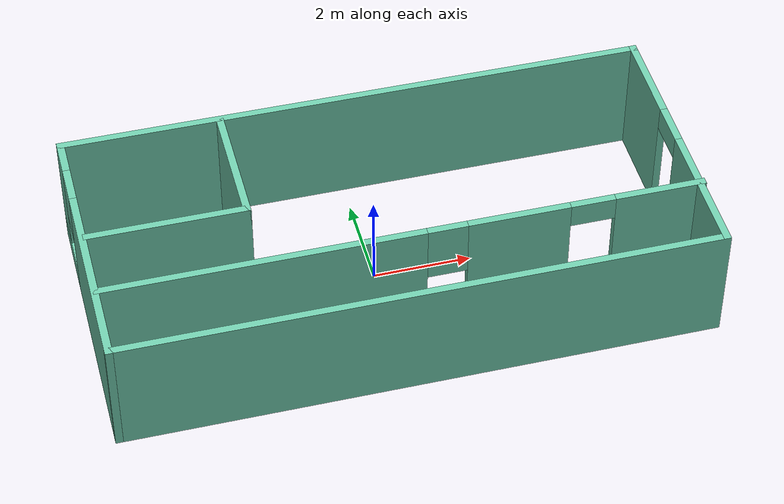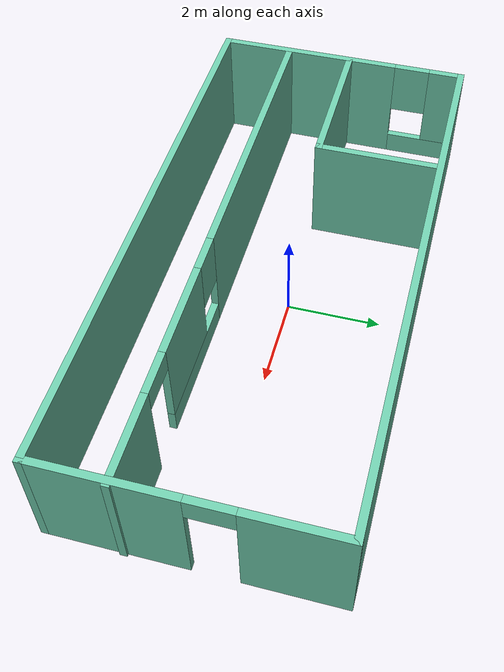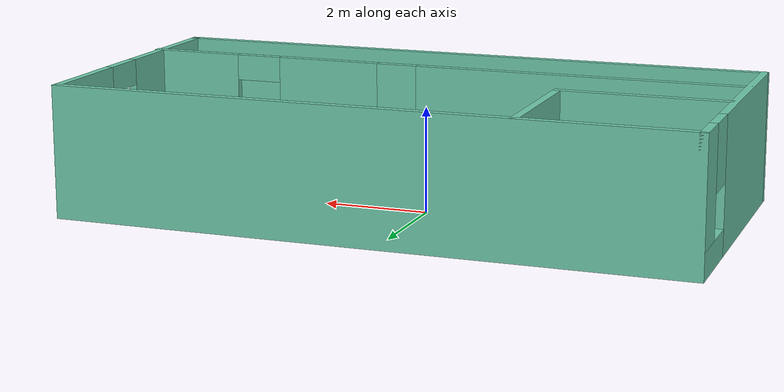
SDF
<?xml version='1.0'?>
<sdf version='1.6'>
  <model name='home'>
    <pose frame=''>0.261824 -0.154631 0 0 -0 0</pose>
    <link name='Wall_0'>
      <collision name='Wall_0_Collision'>
        <geometry>
          <box>
            <size>12 0.15 2.5</size>
          </box>
        </geometry>
        <pose frame=''>0 0 1.25 0 -0 0</pose>
      </collision>
      <visual name='Wall_0_Visual'>
        <pose frame=''>0 0 1.25 0 -0 0</pose>
        <geometry>
          <box>
            <size>12 0.15 2.5</size>
          </box>
        </geometry>
        <material>
          <script>
            <uri>file://media/materials/scripts/gazebo.material</uri>
            <name>Gazebo/Grey</name>
          </script>
          <ambient>0.435294 0.796078 0.67451 1</ambient>
        </material>
        <meta>
          <layer>0</layer>
        </meta>
      </visual>
      <pose frame=''>-0.023 2.8 0 0 -0 0</pose>
    </link>
    <link name='Wall_1'>
      <pose frame=''>5.902 0 0 0 -0 -1.5708</pose>
      <visual name='Wall_1_Visual_0'>
        <pose frame=''>-1.878 0 1.25 0 -0 0</pose>
        <geometry>
          <box>
            <size>1.994 0.15 2.5</size>
          </box>
        </geometry>
        <material>
          <script>
            <uri>file://media/materials/scripts/gazebo.material</uri>
            <name>Gazebo/Grey</name>
          </script>
          <ambient>0.435294 0.796078 0.67451 1</ambient>
        </material>
        <meta>
          <layer>0</layer>
        </meta>
      </visual>
      <collision name='Wall_1_Collision_0'>
        <geometry>
          <box>
            <size>1.994 0.15 2.5</size>
          </box>
        </geometry>
        <pose frame=''>-1.878 0 1.25 0 -0 0</pose>
      </collision>
      <visual name='Wall_1_Visual_1'>
        <pose frame=''>1.447 0 1.25 0 -0 0</pose>
        <geometry>
          <box>
            <size>2.856 0.15 2.5</size>
          </box>
        </geometry>
        <material>
          <script>
            <uri>file://media/materials/scripts/gazebo.material</uri>
            <name>Gazebo/Grey</name>
          </script>
          <ambient>0.435294 0.796078 0.67451 1</ambient>
        </material>
        <meta>
          <layer>0</layer>
        </meta>
      </visual>
      <collision name='Wall_1_Collision_1'>
        <geometry>
          <box>
            <size>2.856 0.15 2.5</size>
          </box>
        </geometry>
        <pose frame=''>1.447 0 1.25 0 -0 0</pose>
      </collision>
      <visual name='Wall_1_Visual_2'>
        <pose frame=''>-0.431 0 2.25 0 -0 0</pose>
        <geometry>
          <box>
            <size>0.9 0.15 0.5</size>
          </box>
        </geometry>
        <material>
          <script>
            <uri>file://media/materials/scripts/gazebo.material</uri>
            <name>Gazebo/Grey</name>
          </script>
          <ambient>0.435294 0.796078 0.67451 1</ambient>
        </material>
        <meta>
          <layer>0</layer>
        </meta>
      </visual>
      <collision name='Wall_1_Collision_2'>
        <geometry>
          <box>
            <size>0.9 0.15 0.5</size>
          </box>
        </geometry>
        <pose frame=''>-0.431 0 2.25 0 -0 0</pose>
      </collision>
    </link>
    <link name='Wall_2'>
      <collision name='Wall_2_Collision'>
        <geometry>
          <box>
            <size>12 0.15 2.5</size>
          </box>
        </geometry>
        <pose frame=''>0 0 1.25 0 -0 0</pose>
      </collision>
      <visual name='Wall_2_Visual'>
        <pose frame=''>0 0 1.25 0 -0 0</pose>
        <geometry>
          <box>
            <size>12 0.15 2.5</size>
          </box>
        </geometry>
        <material>
          <script>
            <uri>file://media/materials/scripts/gazebo.material</uri>
            <name>Gazebo/Grey</name>
          </script>
          <ambient>0.435294 0.796078 0.67451 1</ambient>
        </material>
        <meta>
          <layer>0</layer>
        </meta>
      </visual>
      <pose frame=''>-0.023 -2.8 0 0 -0 3.14159</pose>
    </link>
    <link name='Wall_3'>
      <pose frame=''>-5.948 0 0 0 -0 1.5708</pose>
      <visual name='Wall_3_Visual_0'>
        <pose frame=''>-0.801 0 1.25 0 -0 0</pose>
        <geometry>
          <box>
            <size>4.148 0.15 2.5</size>
          </box>
        </geometry>
        <material>
          <script>
            <uri>file://media/materials/scripts/gazebo.material</uri>
            <name>Gazebo/Grey</name>
          </script>
          <ambient>0.435294 0.796078 0.67451 1</ambient>
        </material>
        <meta>
          <layer>0</layer>
        </meta>
      </visual>
      <collision name='Wall_3_Collision_0'>
        <geometry>
          <box>
            <size>4.148 0.15 2.5</size>
          </box>
        </geometry>
        <pose frame=''>-0.801 0 1.25 0 -0 0</pose>
      </collision>
      <visual name='Wall_3_Visual_1'>
        <pose frame=''>2.074 0 0.25 0 -0 0</pose>
        <geometry>
          <box>
            <size>1.602 0.15 0.5</size>
          </box>
        </geometry>
        <material>
          <script>
            <uri>file://media/materials/scripts/gazebo.material</uri>
            <name>Gazebo/Grey</name>
          </script>
          <ambient>0.435294 0.796078 0.67451 1</ambient>
        </material>
        <meta>
          <layer>0</layer>
        </meta>
      </visual>
      <collision name='Wall_3_Collision_1'>
        <geometry>
          <box>
            <size>1.602 0.15 0.5</size>
          </box>
        </geometry>
        <pose frame=''>2.074 0 0.25 0 -0 0</pose>
      </collision>
      <visual name='Wall_3_Visual_2'>
        <pose frame=''>2.474 0 1.5 0 -0 0</pose>
        <geometry>
          <box>
            <size>0.802 0.15 2</size>
          </box>
        </geometry>
        <material>
          <script>
            <uri>file://media/materials/scripts/gazebo.material</uri>
            <name>Gazebo/Grey</name>
          </script>
          <ambient>0.435294 0.796078 0.67451 1</ambient>
        </material>
        <meta>
          <layer>0</layer>
        </meta>
      </visual>
      <collision name='Wall_3_Collision_2'>
        <geometry>
          <box>
            <size>0.802 0.15 2</size>
          </box>
        </geometry>
        <pose frame=''>2.474 0 1.5 0 -0 0</pose>
      </collision>
      <visual name='Wall_3_Visual_3'>
        <pose frame=''>1.673 0 1.9 0 -0 0</pose>
        <geometry>
          <box>
            <size>0.8 0.15 1.2</size>
          </box>
        </geometry>
        <material>
          <script>
            <uri>file://media/materials/scripts/gazebo.material</uri>
            <name>Gazebo/Grey</name>
          </script>
          <ambient>0.435294 0.796078 0.67451 1</ambient>
        </material>
        <meta>
          <layer>0</layer>
        </meta>
      </visual>
      <collision name='Wall_3_Collision_3'>
        <geometry>
          <box>
            <size>0.8 0.15 1.2</size>
          </box>
        </geometry>
        <pose frame=''>1.673 0 1.9 0 -0 0</pose>
      </collision>
    </link>
    <link name='Wall_5'>
      <collision name='Wall_5_Collision'>
        <geometry>
          <box>
            <size>3.25 0.15 2.5</size>
          </box>
        </geometry>
        <pose frame=''>0 0 1.25 0 -0 0</pose>
      </collision>
      <visual name='Wall_5_Visual'>
        <pose frame=''>0 0 1.25 0 -0 0</pose>
        <geometry>
          <box>
            <size>3.25 0.15 2.5</size>
          </box>
        </geometry>
        <material>
          <script>
            <uri>file://media/materials/scripts/gazebo.material</uri>
            <name>Gazebo/Grey</name>
          </script>
          <ambient>0.435294 0.796078 0.67451 1</ambient>
        </material>
        <meta>
          <layer>0</layer>
        </meta>
      </visual>
      <pose frame=''>-4.306 0.178 0 0 -0 0</pose>
    </link>
    <link name='Wall_6'>
      <collision name='Wall_6_Collision'>
        <geometry>
          <box>
            <size>2.75 0.15 2.5</size>
          </box>
        </geometry>
        <pose frame=''>0 0 1.25 0 -0 0</pose>
      </collision>
      <visual name='Wall_6_Visual'>
        <pose frame=''>0 0 1.25 0 -0 0</pose>
        <geometry>
          <box>
            <size>2.75 0.15 2.5</size>
          </box>
        </geometry>
        <material>
          <script>
            <uri>file://media/materials/scripts/gazebo.material</uri>
            <name>Gazebo/Grey</name>
          </script>
          <ambient>0.435294 0.796078 0.67451 1</ambient>
        </material>
        <meta>
          <layer>0</layer>
        </meta>
      </visual>
      <pose frame=''>-2.756 1.478 0 0 -0 1.5708</pose>
    </link>
    <link name='Wall_8'>
      <pose frame=''>0.023 -1.271 0 0 -0 0</pose>
      <visual name='Wall_8_Visual_0'>
        <pose frame=''>-2.793 0 1.25 0 -0 0</pose>
        <geometry>
          <box>
            <size>6.414 0.15 2.5</size>
          </box>
        </geometry>
        <material>
          <script>
            <uri>file://media/materials/scripts/gazebo.material</uri>
            <name>Gazebo/Grey</name>
          </script>
          <ambient>0.435294 0.796078 0.67451 1</ambient>
        </material>
        <meta>
          <layer>0</layer>
        </meta>
      </visual>
      <collision name='Wall_8_Collision_0'>
        <geometry>
          <box>
            <size>6.414 0.15 2.5</size>
          </box>
        </geometry>
        <pose frame=''>-2.793 0 1.25 0 -0 0</pose>
      </collision>
      <visual name='Wall_8_Visual_1'>
        <pose frame=''>5.081 0 1.25 0 -0 0</pose>
        <geometry>
          <box>
            <size>1.838 0.15 2.5</size>
          </box>
        </geometry>
        <material>
          <script>
            <uri>file://media/materials/scripts/gazebo.material</uri>
            <name>Gazebo/Grey</name>
          </script>
          <ambient>0.435294 0.796078 0.67451 1</ambient>
        </material>
        <meta>
          <layer>0</layer>
        </meta>
      </visual>
      <collision name='Wall_8_Collision_1'>
        <geometry>
          <box>
            <size>1.838 0.15 2.5</size>
          </box>
        </geometry>
        <pose frame=''>5.081 0 1.25 0 -0 0</pose>
      </collision>
      <visual name='Wall_8_Visual_2'>
        <pose frame=''>1.838 0 0.25 0 -0 0</pose>
        <geometry>
          <box>
            <size>2.848 0.15 0.5</size>
          </box>
        </geometry>
        <material>
          <script>
            <uri>file://media/materials/scripts/gazebo.material</uri>
            <name>Gazebo/Grey</name>
          </script>
          <ambient>0.435294 0.796078 0.67451 1</ambient>
        </material>
        <meta>
          <layer>0</layer>
        </meta>
      </visual>
      <collision name='Wall_8_Collision_2'>
        <geometry>
          <box>
            <size>2.848 0.15 0.5</size>
          </box>
        </geometry>
        <pose frame=''>1.838 0 0.25 0 -0 0</pose>
      </collision>
      <visual name='Wall_8_Visual_3'>
        <pose frame=''>2.238 0 1.5 0 -0 0</pose>
        <geometry>
          <box>
            <size>2.048 0.15 2</size>
          </box>
        </geometry>
        <material>
          <script>
            <uri>file://media/materials/scripts/gazebo.material</uri>
            <name>Gazebo/Grey</name>
          </script>
          <ambient>0.435294 0.796078 0.67451 1</ambient>
        </material>
        <meta>
          <layer>0</layer>
        </meta>
      </visual>
      <collision name='Wall_8_Collision_3'>
        <geometry>
          <box>
            <size>2.048 0.15 2</size>
          </box>
        </geometry>
        <pose frame=''>2.238 0 1.5 0 -0 0</pose>
      </collision>
      <visual name='Wall_8_Visual_4'>
        <pose frame=''>0.814 0 1.9 0 -0 0</pose>
        <geometry>
          <box>
            <size>0.8 0.15 1.2</size>
          </box>
        </geometry>
        <material>
          <script>
            <uri>file://media/materials/scripts/gazebo.material</uri>
            <name>Gazebo/Grey</name>
          </script>
          <ambient>0.435294 0.796078 0.67451 1</ambient>
        </material>
        <meta>
          <layer>0</layer>
        </meta>
      </visual>
      <collision name='Wall_8_Collision_4'>
        <geometry>
          <box>
            <size>0.8 0.15 1.2</size>
          </box>
        </geometry>
        <pose frame=''>0.814 0 1.9 0 -0 0</pose>
      </collision>
      <visual name='Wall_8_Visual_5'>
        <pose frame=''>3.712 0 2.25 0 -0 0</pose>
        <geometry>
          <box>
            <size>0.9 0.15 0.5</size>
          </box>
        </geometry>
        <material>
          <script>
            <uri>file://media/materials/scripts/gazebo.material</uri>
            <name>Gazebo/Grey</name>
          </script>
          <ambient>0.435294 0.796078 0.67451 1</ambient>
        </material>
        <meta>
          <layer>0</layer>
        </meta>
      </visual>
      <collision name='Wall_8_Collision_5'>
        <geometry>
          <box>
            <size>0.9 0.15 0.5</size>
          </box>
        </geometry>
        <pose frame=''>3.712 0 2.25 0 -0 0</pose>
      </collision>
    </link>
    <static>1</static>
  </model>
</sdf>
